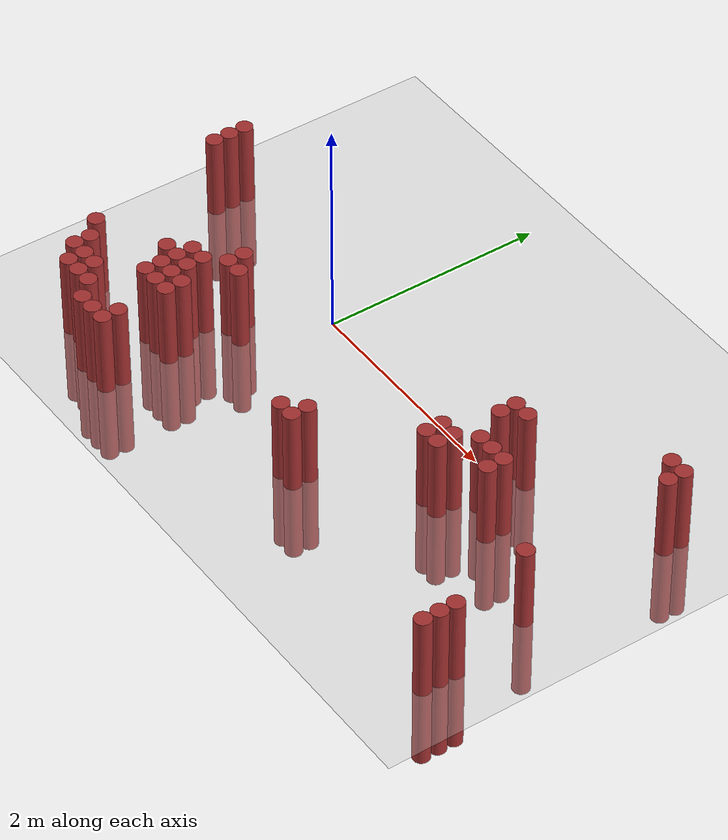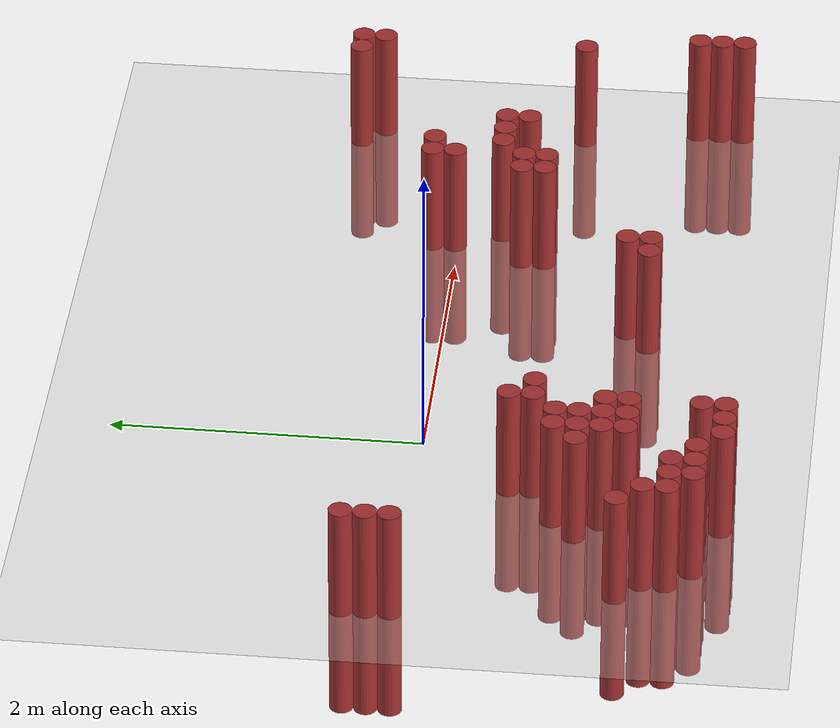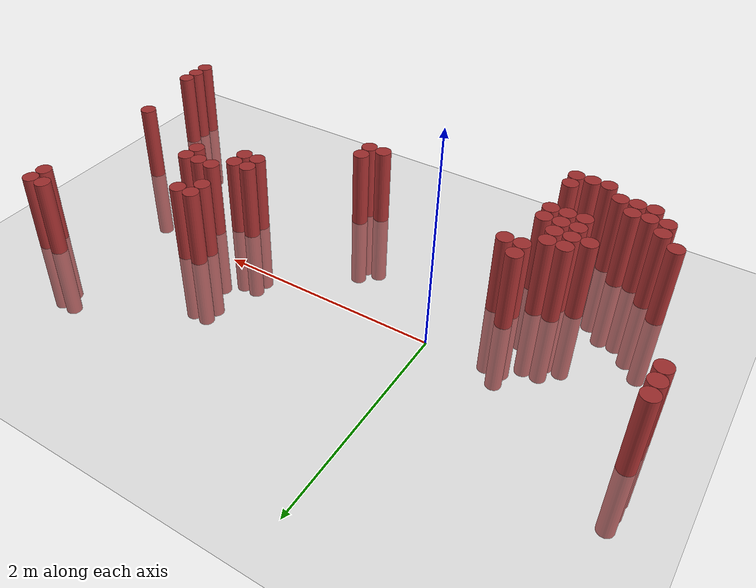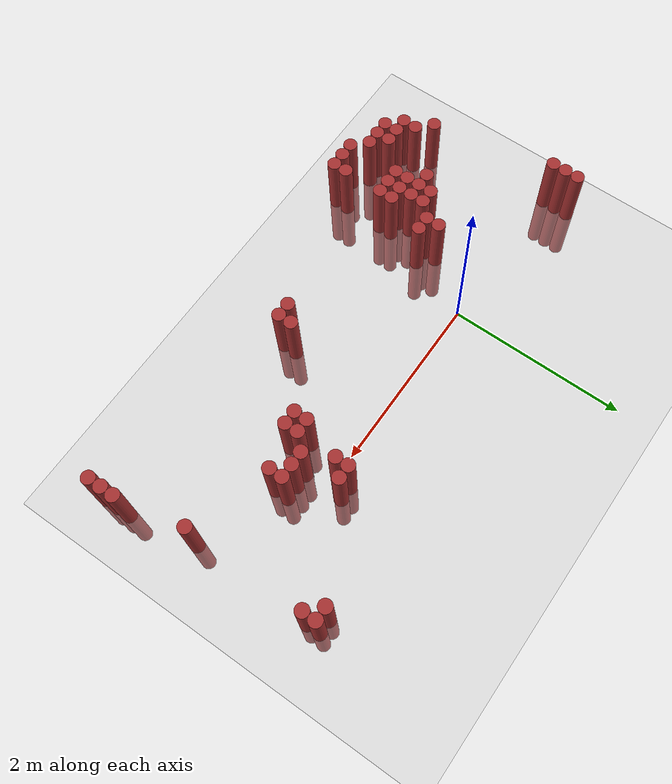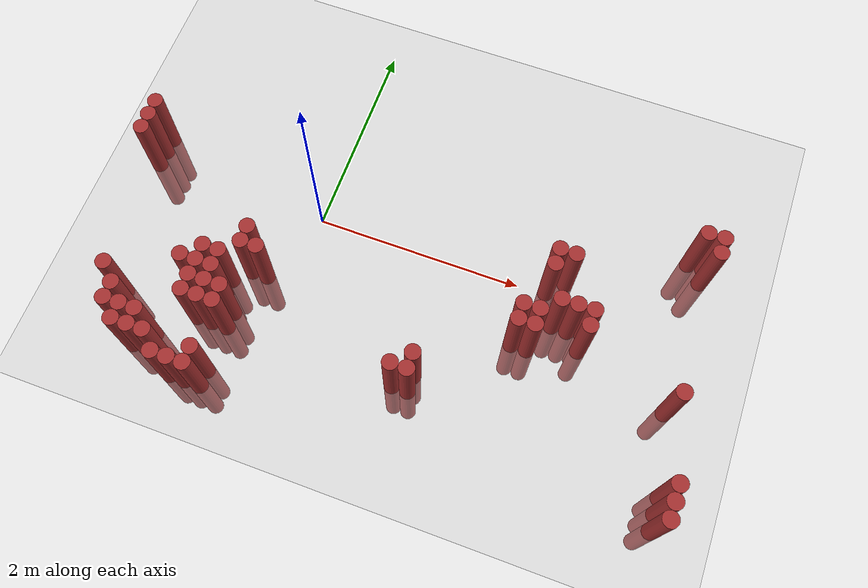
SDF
<sdf version="1.6">
 <world name="default">
  <model name="ground_plane">
   <static>1</static>
   <link name="link">
    <collision name="collision">
     <geometry><plane><normal>0 0 1</normal><size>100 100</size></plane></geometry>
     <surface><friction><ode><mu>100</mu><mu2>50</mu2></ode></friction></surface>
    </collision>
    <visual name="visual">
     <cast_shadows>0</cast_shadows>
     <geometry><plane><normal>0 0 1</normal><size>100 100</size></plane></geometry>
     <material>
      <script><uri>file://media/materials/scripts/gazebo.material</uri><name>Gazebo/Grey</name></script>
     </material>
    </visual>
   </link>
  </model>
  <model name="unit_cylinder_329">
   <static>1</static>
   <pose>-1.775000 0.025000 0.000000 0.000000 0.000000 0.000000</pose>
   <link name="link">
    <inertial>
     <mass>1</mass>
     <inertia><ixx>0.145833</ixx><ixy>0</ixy><ixz>0</ixz><iyy>0.145833</iyy><iyz>0</iyz><izz>0.125</izz></inertia>
    </inertial>
    <collision name="collision">
     <geometry><cylinder><radius>0.075000</radius><length>1.5</length></cylinder></geometry>
    </collision>
    <visual name="visual">
     <geometry><cylinder><radius>0.075000</radius><length>1.5</length></cylinder></geometry>
     <material>
      <ambient>0.648000 0.192000 0.192000 1</ambient>
      <diffuse>0.648000 0.192000 0.192000 1</diffuse>
     </material>
     <material>
      <script><name>Gazebo/Grey</name><uri>file://media/materials/scripts/gazebo.material</uri></script>
     </material>
    </visual>
   </link>
  </model>
  <model name="unit_cylinder_330">
   <static>1</static>
   <pose>-1.775000 0.175000 0.000000 0.000000 0.000000 0.000000</pose>
   <link name="link">
    <inertial>
     <mass>1</mass>
     <inertia><ixx>0.145833</ixx><ixy>0</ixy><ixz>0</ixz><iyy>0.145833</iyy><iyz>0</iyz><izz>0.125</izz></inertia>
    </inertial>
    <collision name="collision">
     <geometry><cylinder><radius>0.075000</radius><length>1.5</length></cylinder></geometry>
    </collision>
    <visual name="visual">
     <geometry><cylinder><radius>0.075000</radius><length>1.5</length></cylinder></geometry>
     <material>
      <ambient>0.648000 0.192000 0.192000 1</ambient>
      <diffuse>0.648000 0.192000 0.192000 1</diffuse>
     </material>
     <material>
      <script><name>Gazebo/Grey</name><uri>file://media/materials/scripts/gazebo.material</uri></script>
     </material>
    </visual>
   </link>
  </model>
  <model name="unit_cylinder_331">
   <static>1</static>
   <pose>-1.775000 0.325000 0.000000 0.000000 0.000000 0.000000</pose>
   <link name="link">
    <inertial>
     <mass>1</mass>
     <inertia><ixx>0.145833</ixx><ixy>0</ixy><ixz>0</ixz><iyy>0.145833</iyy><iyz>0</iyz><izz>0.125</izz></inertia>
    </inertial>
    <collision name="collision">
     <geometry><cylinder><radius>0.075000</radius><length>1.5</length></cylinder></geometry>
    </collision>
    <visual name="visual">
     <geometry><cylinder><radius>0.075000</radius><length>1.5</length></cylinder></geometry>
     <material>
      <ambient>0.648000 0.192000 0.192000 1</ambient>
      <diffuse>0.648000 0.192000 0.192000 1</diffuse>
     </material>
     <material>
      <script><name>Gazebo/Grey</name><uri>file://media/materials/scripts/gazebo.material</uri></script>
     </material>
    </visual>
   </link>
  </model>
  <model name="unit_cylinder_333">
   <static>1</static>
   <pose>-1.475000 -1.325000 0.000000 0.000000 0.000000 0.000000</pose>
   <link name="link">
    <inertial>
     <mass>1</mass>
     <inertia><ixx>0.145833</ixx><ixy>0</ixy><ixz>0</ixz><iyy>0.145833</iyy><iyz>0</iyz><izz>0.125</izz></inertia>
    </inertial>
    <collision name="collision">
     <geometry><cylinder><radius>0.075000</radius><length>1.5</length></cylinder></geometry>
    </collision>
    <visual name="visual">
     <geometry><cylinder><radius>0.075000</radius><length>1.5</length></cylinder></geometry>
     <material>
      <ambient>0.648000 0.192000 0.192000 1</ambient>
      <diffuse>0.648000 0.192000 0.192000 1</diffuse>
     </material>
     <material>
      <script><name>Gazebo/Grey</name><uri>file://media/materials/scripts/gazebo.material</uri></script>
     </material>
    </visual>
   </link>
  </model>
  <model name="unit_cylinder_334">
   <static>1</static>
   <pose>-1.325000 -1.625000 0.000000 0.000000 0.000000 0.000000</pose>
   <link name="link">
    <inertial>
     <mass>1</mass>
     <inertia><ixx>0.145833</ixx><ixy>0</ixy><ixz>0</ixz><iyy>0.145833</iyy><iyz>0</iyz><izz>0.125</izz></inertia>
    </inertial>
    <collision name="collision">
     <geometry><cylinder><radius>0.075000</radius><length>1.5</length></cylinder></geometry>
    </collision>
    <visual name="visual">
     <geometry><cylinder><radius>0.075000</radius><length>1.5</length></cylinder></geometry>
     <material>
      <ambient>0.648000 0.192000 0.192000 1</ambient>
      <diffuse>0.648000 0.192000 0.192000 1</diffuse>
     </material>
     <material>
      <script><name>Gazebo/Grey</name><uri>file://media/materials/scripts/gazebo.material</uri></script>
     </material>
    </visual>
   </link>
  </model>
  <model name="unit_cylinder_335">
   <static>1</static>
   <pose>-1.325000 -1.475000 0.000000 0.000000 0.000000 0.000000</pose>
   <link name="link">
    <inertial>
     <mass>1</mass>
     <inertia><ixx>0.145833</ixx><ixy>0</ixy><ixz>0</ixz><iyy>0.145833</iyy><iyz>0</iyz><izz>0.125</izz></inertia>
    </inertial>
    <collision name="collision">
     <geometry><cylinder><radius>0.075000</radius><length>1.5</length></cylinder></geometry>
    </collision>
    <visual name="visual">
     <geometry><cylinder><radius>0.075000</radius><length>1.5</length></cylinder></geometry>
     <material>
      <ambient>0.648000 0.192000 0.192000 1</ambient>
      <diffuse>0.648000 0.192000 0.192000 1</diffuse>
     </material>
     <material>
      <script><name>Gazebo/Grey</name><uri>file://media/materials/scripts/gazebo.material</uri></script>
     </material>
    </visual>
   </link>
  </model>
  <model name="unit_cylinder_336">
   <static>1</static>
   <pose>-1.175000 -1.775000 0.000000 0.000000 0.000000 0.000000</pose>
   <link name="link">
    <inertial>
     <mass>1</mass>
     <inertia><ixx>0.145833</ixx><ixy>0</ixy><ixz>0</ixz><iyy>0.145833</iyy><iyz>0</iyz><izz>0.125</izz></inertia>
    </inertial>
    <collision name="collision">
     <geometry><cylinder><radius>0.075000</radius><length>1.5</length></cylinder></geometry>
    </collision>
    <visual name="visual">
     <geometry><cylinder><radius>0.075000</radius><length>1.5</length></cylinder></geometry>
     <material>
      <ambient>0.648000 0.192000 0.192000 1</ambient>
      <diffuse>0.648000 0.192000 0.192000 1</diffuse>
     </material>
     <material>
      <script><name>Gazebo/Grey</name><uri>file://media/materials/scripts/gazebo.material</uri></script>
     </material>
    </visual>
   </link>
  </model>
  <model name="unit_cylinder_337">
   <static>1</static>
   <pose>-1.175000 -1.625000 0.000000 0.000000 0.000000 0.000000</pose>
   <link name="link">
    <inertial>
     <mass>1</mass>
     <inertia><ixx>0.145833</ixx><ixy>0</ixy><ixz>0</ixz><iyy>0.145833</iyy><iyz>0</iyz><izz>0.125</izz></inertia>
    </inertial>
    <collision name="collision">
     <geometry><cylinder><radius>0.075000</radius><length>1.5</length></cylinder></geometry>
    </collision>
    <visual name="visual">
     <geometry><cylinder><radius>0.075000</radius><length>1.5</length></cylinder></geometry>
     <material>
      <ambient>0.648000 0.192000 0.192000 1</ambient>
      <diffuse>0.648000 0.192000 0.192000 1</diffuse>
     </material>
     <material>
      <script><name>Gazebo/Grey</name><uri>file://media/materials/scripts/gazebo.material</uri></script>
     </material>
    </visual>
   </link>
  </model>
  <model name="unit_cylinder_340">
   <static>1</static>
   <pose>-1.025000 -1.775000 0.000000 0.000000 0.000000 0.000000</pose>
   <link name="link">
    <inertial>
     <mass>1</mass>
     <inertia><ixx>0.145833</ixx><ixy>0</ixy><ixz>0</ixz><iyy>0.145833</iyy><iyz>0</iyz><izz>0.125</izz></inertia>
    </inertial>
    <collision name="collision">
     <geometry><cylinder><radius>0.075000</radius><length>1.5</length></cylinder></geometry>
    </collision>
    <visual name="visual">
     <geometry><cylinder><radius>0.075000</radius><length>1.5</length></cylinder></geometry>
     <material>
      <ambient>0.648000 0.192000 0.192000 1</ambient>
      <diffuse>0.648000 0.192000 0.192000 1</diffuse>
     </material>
     <material>
      <script><name>Gazebo/Grey</name><uri>file://media/materials/scripts/gazebo.material</uri></script>
     </material>
    </visual>
   </link>
  </model>
  <model name="unit_cylinder_341">
   <static>1</static>
   <pose>-1.025000 -1.625000 0.000000 0.000000 0.000000 0.000000</pose>
   <link name="link">
    <inertial>
     <mass>1</mass>
     <inertia><ixx>0.145833</ixx><ixy>0</ixy><ixz>0</ixz><iyy>0.145833</iyy><iyz>0</iyz><izz>0.125</izz></inertia>
    </inertial>
    <collision name="collision">
     <geometry><cylinder><radius>0.075000</radius><length>1.5</length></cylinder></geometry>
    </collision>
    <visual name="visual">
     <geometry><cylinder><radius>0.075000</radius><length>1.5</length></cylinder></geometry>
     <material>
      <ambient>0.648000 0.192000 0.192000 1</ambient>
      <diffuse>0.648000 0.192000 0.192000 1</diffuse>
     </material>
     <material>
      <script><name>Gazebo/Grey</name><uri>file://media/materials/scripts/gazebo.material</uri></script>
     </material>
    </visual>
   </link>
  </model>
  <model name="unit_cylinder_343">
   <static>1</static>
   <pose>-0.875000 -1.775000 0.000000 0.000000 0.000000 0.000000</pose>
   <link name="link">
    <inertial>
     <mass>1</mass>
     <inertia><ixx>0.145833</ixx><ixy>0</ixy><ixz>0</ixz><iyy>0.145833</iyy><iyz>0</iyz><izz>0.125</izz></inertia>
    </inertial>
    <collision name="collision">
     <geometry><cylinder><radius>0.075000</radius><length>1.5</length></cylinder></geometry>
    </collision>
    <visual name="visual">
     <geometry><cylinder><radius>0.075000</radius><length>1.5</length></cylinder></geometry>
     <material>
      <ambient>0.648000 0.192000 0.192000 1</ambient>
      <diffuse>0.648000 0.192000 0.192000 1</diffuse>
     </material>
     <material>
      <script><name>Gazebo/Grey</name><uri>file://media/materials/scripts/gazebo.material</uri></script>
     </material>
    </visual>
   </link>
  </model>
  <model name="unit_cylinder_344">
   <static>1</static>
   <pose>-0.875000 -1.025000 0.000000 0.000000 0.000000 0.000000</pose>
   <link name="link">
    <inertial>
     <mass>1</mass>
     <inertia><ixx>0.145833</ixx><ixy>0</ixy><ixz>0</ixz><iyy>0.145833</iyy><iyz>0</iyz><izz>0.125</izz></inertia>
    </inertial>
    <collision name="collision">
     <geometry><cylinder><radius>0.075000</radius><length>1.5</length></cylinder></geometry>
    </collision>
    <visual name="visual">
     <geometry><cylinder><radius>0.075000</radius><length>1.5</length></cylinder></geometry>
     <material>
      <ambient>0.648000 0.192000 0.192000 1</ambient>
      <diffuse>0.648000 0.192000 0.192000 1</diffuse>
     </material>
     <material>
      <script><name>Gazebo/Grey</name><uri>file://media/materials/scripts/gazebo.material</uri></script>
     </material>
    </visual>
   </link>
  </model>
  <model name="unit_cylinder_345">
   <static>1</static>
   <pose>-0.725000 -1.925000 0.000000 0.000000 0.000000 0.000000</pose>
   <link name="link">
    <inertial>
     <mass>1</mass>
     <inertia><ixx>0.145833</ixx><ixy>0</ixy><ixz>0</ixz><iyy>0.145833</iyy><iyz>0</iyz><izz>0.125</izz></inertia>
    </inertial>
    <collision name="collision">
     <geometry><cylinder><radius>0.075000</radius><length>1.5</length></cylinder></geometry>
    </collision>
    <visual name="visual">
     <geometry><cylinder><radius>0.075000</radius><length>1.5</length></cylinder></geometry>
     <material>
      <ambient>0.648000 0.192000 0.192000 1</ambient>
      <diffuse>0.648000 0.192000 0.192000 1</diffuse>
     </material>
     <material>
      <script><name>Gazebo/Grey</name><uri>file://media/materials/scripts/gazebo.material</uri></script>
     </material>
    </visual>
   </link>
  </model>
  <model name="unit_cylinder_346">
   <static>1</static>
   <pose>-0.725000 -1.325000 0.000000 0.000000 0.000000 0.000000</pose>
   <link name="link">
    <inertial>
     <mass>1</mass>
     <inertia><ixx>0.145833</ixx><ixy>0</ixy><ixz>0</ixz><iyy>0.145833</iyy><iyz>0</iyz><izz>0.125</izz></inertia>
    </inertial>
    <collision name="collision">
     <geometry><cylinder><radius>0.075000</radius><length>1.5</length></cylinder></geometry>
    </collision>
    <visual name="visual">
     <geometry><cylinder><radius>0.075000</radius><length>1.5</length></cylinder></geometry>
     <material>
      <ambient>0.648000 0.192000 0.192000 1</ambient>
      <diffuse>0.648000 0.192000 0.192000 1</diffuse>
     </material>
     <material>
      <script><name>Gazebo/Grey</name><uri>file://media/materials/scripts/gazebo.material</uri></script>
     </material>
    </visual>
   </link>
  </model>
  <model name="unit_cylinder_347">
   <static>1</static>
   <pose>-0.725000 -1.175000 0.000000 0.000000 0.000000 0.000000</pose>
   <link name="link">
    <inertial>
     <mass>1</mass>
     <inertia><ixx>0.145833</ixx><ixy>0</ixy><ixz>0</ixz><iyy>0.145833</iyy><iyz>0</iyz><izz>0.125</izz></inertia>
    </inertial>
    <collision name="collision">
     <geometry><cylinder><radius>0.075000</radius><length>1.5</length></cylinder></geometry>
    </collision>
    <visual name="visual">
     <geometry><cylinder><radius>0.075000</radius><length>1.5</length></cylinder></geometry>
     <material>
      <ambient>0.648000 0.192000 0.192000 1</ambient>
      <diffuse>0.648000 0.192000 0.192000 1</diffuse>
     </material>
     <material>
      <script><name>Gazebo/Grey</name><uri>file://media/materials/scripts/gazebo.material</uri></script>
     </material>
    </visual>
   </link>
  </model>
  <model name="unit_cylinder_348">
   <static>1</static>
   <pose>-0.725000 -1.025000 0.000000 0.000000 0.000000 0.000000</pose>
   <link name="link">
    <inertial>
     <mass>1</mass>
     <inertia><ixx>0.145833</ixx><ixy>0</ixy><ixz>0</ixz><iyy>0.145833</iyy><iyz>0</iyz><izz>0.125</izz></inertia>
    </inertial>
    <collision name="collision">
     <geometry><cylinder><radius>0.075000</radius><length>1.5</length></cylinder></geometry>
    </collision>
    <visual name="visual">
     <geometry><cylinder><radius>0.075000</radius><length>1.5</length></cylinder></geometry>
     <material>
      <ambient>0.648000 0.192000 0.192000 1</ambient>
      <diffuse>0.648000 0.192000 0.192000 1</diffuse>
     </material>
     <material>
      <script><name>Gazebo/Grey</name><uri>file://media/materials/scripts/gazebo.material</uri></script>
     </material>
    </visual>
   </link>
  </model>
  <model name="unit_cylinder_349">
   <static>1</static>
   <pose>-0.725000 -0.875000 0.000000 0.000000 0.000000 0.000000</pose>
   <link name="link">
    <inertial>
     <mass>1</mass>
     <inertia><ixx>0.145833</ixx><ixy>0</ixy><ixz>0</ixz><iyy>0.145833</iyy><iyz>0</iyz><izz>0.125</izz></inertia>
    </inertial>
    <collision name="collision">
     <geometry><cylinder><radius>0.075000</radius><length>1.5</length></cylinder></geometry>
    </collision>
    <visual name="visual">
     <geometry><cylinder><radius>0.075000</radius><length>1.5</length></cylinder></geometry>
     <material>
      <ambient>0.648000 0.192000 0.192000 1</ambient>
      <diffuse>0.648000 0.192000 0.192000 1</diffuse>
     </material>
     <material>
      <script><name>Gazebo/Grey</name><uri>file://media/materials/scripts/gazebo.material</uri></script>
     </material>
    </visual>
   </link>
  </model>
  <model name="unit_cylinder_350">
   <static>1</static>
   <pose>-0.575000 -1.925000 0.000000 0.000000 0.000000 0.000000</pose>
   <link name="link">
    <inertial>
     <mass>1</mass>
     <inertia><ixx>0.145833</ixx><ixy>0</ixy><ixz>0</ixz><iyy>0.145833</iyy><iyz>0</iyz><izz>0.125</izz></inertia>
    </inertial>
    <collision name="collision">
     <geometry><cylinder><radius>0.075000</radius><length>1.5</length></cylinder></geometry>
    </collision>
    <visual name="visual">
     <geometry><cylinder><radius>0.075000</radius><length>1.5</length></cylinder></geometry>
     <material>
      <ambient>0.648000 0.192000 0.192000 1</ambient>
      <diffuse>0.648000 0.192000 0.192000 1</diffuse>
     </material>
     <material>
      <script><name>Gazebo/Grey</name><uri>file://media/materials/scripts/gazebo.material</uri></script>
     </material>
    </visual>
   </link>
  </model>
  <model name="unit_cylinder_351">
   <static>1</static>
   <pose>-0.575000 -1.325000 0.000000 0.000000 0.000000 0.000000</pose>
   <link name="link">
    <inertial>
     <mass>1</mass>
     <inertia><ixx>0.145833</ixx><ixy>0</ixy><ixz>0</ixz><iyy>0.145833</iyy><iyz>0</iyz><izz>0.125</izz></inertia>
    </inertial>
    <collision name="collision">
     <geometry><cylinder><radius>0.075000</radius><length>1.5</length></cylinder></geometry>
    </collision>
    <visual name="visual">
     <geometry><cylinder><radius>0.075000</radius><length>1.5</length></cylinder></geometry>
     <material>
      <ambient>0.648000 0.192000 0.192000 1</ambient>
      <diffuse>0.648000 0.192000 0.192000 1</diffuse>
     </material>
     <material>
      <script><name>Gazebo/Grey</name><uri>file://media/materials/scripts/gazebo.material</uri></script>
     </material>
    </visual>
   </link>
  </model>
  <model name="unit_cylinder_352">
   <static>1</static>
   <pose>-0.575000 -1.175000 0.000000 0.000000 0.000000 0.000000</pose>
   <link name="link">
    <inertial>
     <mass>1</mass>
     <inertia><ixx>0.145833</ixx><ixy>0</ixy><ixz>0</ixz><iyy>0.145833</iyy><iyz>0</iyz><izz>0.125</izz></inertia>
    </inertial>
    <collision name="collision">
     <geometry><cylinder><radius>0.075000</radius><length>1.5</length></cylinder></geometry>
    </collision>
    <visual name="visual">
     <geometry><cylinder><radius>0.075000</radius><length>1.5</length></cylinder></geometry>
     <material>
      <ambient>0.648000 0.192000 0.192000 1</ambient>
      <diffuse>0.648000 0.192000 0.192000 1</diffuse>
     </material>
     <material>
      <script><name>Gazebo/Grey</name><uri>file://media/materials/scripts/gazebo.material</uri></script>
     </material>
    </visual>
   </link>
  </model>
  <model name="unit_cylinder_353">
   <static>1</static>
   <pose>-0.575000 -1.025000 0.000000 0.000000 0.000000 0.000000</pose>
   <link name="link">
    <inertial>
     <mass>1</mass>
     <inertia><ixx>0.145833</ixx><ixy>0</ixy><ixz>0</ixz><iyy>0.145833</iyy><iyz>0</iyz><izz>0.125</izz></inertia>
    </inertial>
    <collision name="collision">
     <geometry><cylinder><radius>0.075000</radius><length>1.5</length></cylinder></geometry>
    </collision>
    <visual name="visual">
     <geometry><cylinder><radius>0.075000</radius><length>1.5</length></cylinder></geometry>
     <material>
      <ambient>0.648000 0.192000 0.192000 1</ambient>
      <diffuse>0.648000 0.192000 0.192000 1</diffuse>
     </material>
     <material>
      <script><name>Gazebo/Grey</name><uri>file://media/materials/scripts/gazebo.material</uri></script>
     </material>
    </visual>
   </link>
  </model>
  <model name="unit_cylinder_354">
   <static>1</static>
   <pose>-0.575000 -0.875000 0.000000 0.000000 0.000000 0.000000</pose>
   <link name="link">
    <inertial>
     <mass>1</mass>
     <inertia><ixx>0.145833</ixx><ixy>0</ixy><ixz>0</ixz><iyy>0.145833</iyy><iyz>0</iyz><izz>0.125</izz></inertia>
    </inertial>
    <collision name="collision">
     <geometry><cylinder><radius>0.075000</radius><length>1.5</length></cylinder></geometry>
    </collision>
    <visual name="visual">
     <geometry><cylinder><radius>0.075000</radius><length>1.5</length></cylinder></geometry>
     <material>
      <ambient>0.648000 0.192000 0.192000 1</ambient>
      <diffuse>0.648000 0.192000 0.192000 1</diffuse>
     </material>
     <material>
      <script><name>Gazebo/Grey</name><uri>file://media/materials/scripts/gazebo.material</uri></script>
     </material>
    </visual>
   </link>
  </model>
  <model name="unit_cylinder_355">
   <static>1</static>
   <pose>-0.425000 -1.925000 0.000000 0.000000 0.000000 0.000000</pose>
   <link name="link">
    <inertial>
     <mass>1</mass>
     <inertia><ixx>0.145833</ixx><ixy>0</ixy><ixz>0</ixz><iyy>0.145833</iyy><iyz>0</iyz><izz>0.125</izz></inertia>
    </inertial>
    <collision name="collision">
     <geometry><cylinder><radius>0.075000</radius><length>1.5</length></cylinder></geometry>
    </collision>
    <visual name="visual">
     <geometry><cylinder><radius>0.075000</radius><length>1.5</length></cylinder></geometry>
     <material>
      <ambient>0.648000 0.192000 0.192000 1</ambient>
      <diffuse>0.648000 0.192000 0.192000 1</diffuse>
     </material>
     <material>
      <script><name>Gazebo/Grey</name><uri>file://media/materials/scripts/gazebo.material</uri></script>
     </material>
    </visual>
   </link>
  </model>
  <model name="unit_cylinder_356">
   <static>1</static>
   <pose>-0.425000 -1.775000 0.000000 0.000000 0.000000 0.000000</pose>
   <link name="link">
    <inertial>
     <mass>1</mass>
     <inertia><ixx>0.145833</ixx><ixy>0</ixy><ixz>0</ixz><iyy>0.145833</iyy><iyz>0</iyz><izz>0.125</izz></inertia>
    </inertial>
    <collision name="collision">
     <geometry><cylinder><radius>0.075000</radius><length>1.5</length></cylinder></geometry>
    </collision>
    <visual name="visual">
     <geometry><cylinder><radius>0.075000</radius><length>1.5</length></cylinder></geometry>
     <material>
      <ambient>0.648000 0.192000 0.192000 1</ambient>
      <diffuse>0.648000 0.192000 0.192000 1</diffuse>
     </material>
     <material>
      <script><name>Gazebo/Grey</name><uri>file://media/materials/scripts/gazebo.material</uri></script>
     </material>
    </visual>
   </link>
  </model>
  <model name="unit_cylinder_357">
   <static>1</static>
   <pose>-0.425000 -1.325000 0.000000 0.000000 0.000000 0.000000</pose>
   <link name="link">
    <inertial>
     <mass>1</mass>
     <inertia><ixx>0.145833</ixx><ixy>0</ixy><ixz>0</ixz><iyy>0.145833</iyy><iyz>0</iyz><izz>0.125</izz></inertia>
    </inertial>
    <collision name="collision">
     <geometry><cylinder><radius>0.075000</radius><length>1.5</length></cylinder></geometry>
    </collision>
    <visual name="visual">
     <geometry><cylinder><radius>0.075000</radius><length>1.5</length></cylinder></geometry>
     <material>
      <ambient>0.648000 0.192000 0.192000 1</ambient>
      <diffuse>0.648000 0.192000 0.192000 1</diffuse>
     </material>
     <material>
      <script><name>Gazebo/Grey</name><uri>file://media/materials/scripts/gazebo.material</uri></script>
     </material>
    </visual>
   </link>
  </model>
  <model name="unit_cylinder_358">
   <static>1</static>
   <pose>-0.425000 -1.175000 0.000000 0.000000 0.000000 0.000000</pose>
   <link name="link">
    <inertial>
     <mass>1</mass>
     <inertia><ixx>0.145833</ixx><ixy>0</ixy><ixz>0</ixz><iyy>0.145833</iyy><iyz>0</iyz><izz>0.125</izz></inertia>
    </inertial>
    <collision name="collision">
     <geometry><cylinder><radius>0.075000</radius><length>1.5</length></cylinder></geometry>
    </collision>
    <visual name="visual">
     <geometry><cylinder><radius>0.075000</radius><length>1.5</length></cylinder></geometry>
     <material>
      <ambient>0.648000 0.192000 0.192000 1</ambient>
      <diffuse>0.648000 0.192000 0.192000 1</diffuse>
     </material>
     <material>
      <script><name>Gazebo/Grey</name><uri>file://media/materials/scripts/gazebo.material</uri></script>
     </material>
    </visual>
   </link>
  </model>
  <model name="unit_cylinder_359">
   <static>1</static>
   <pose>-0.425000 -0.725000 0.000000 0.000000 0.000000 0.000000</pose>
   <link name="link">
    <inertial>
     <mass>1</mass>
     <inertia><ixx>0.145833</ixx><ixy>0</ixy><ixz>0</ixz><iyy>0.145833</iyy><iyz>0</iyz><izz>0.125</izz></inertia>
    </inertial>
    <collision name="collision">
     <geometry><cylinder><radius>0.075000</radius><length>1.5</length></cylinder></geometry>
    </collision>
    <visual name="visual">
     <geometry><cylinder><radius>0.075000</radius><length>1.5</length></cylinder></geometry>
     <material>
      <ambient>0.648000 0.192000 0.192000 1</ambient>
      <diffuse>0.648000 0.192000 0.192000 1</diffuse>
     </material>
     <material>
      <script><name>Gazebo/Grey</name><uri>file://media/materials/scripts/gazebo.material</uri></script>
     </material>
    </visual>
   </link>
  </model>
  <model name="unit_cylinder_360">
   <static>1</static>
   <pose>-0.425000 -0.575000 0.000000 0.000000 0.000000 0.000000</pose>
   <link name="link">
    <inertial>
     <mass>1</mass>
     <inertia><ixx>0.145833</ixx><ixy>0</ixy><ixz>0</ixz><iyy>0.145833</iyy><iyz>0</iyz><izz>0.125</izz></inertia>
    </inertial>
    <collision name="collision">
     <geometry><cylinder><radius>0.075000</radius><length>1.5</length></cylinder></geometry>
    </collision>
    <visual name="visual">
     <geometry><cylinder><radius>0.075000</radius><length>1.5</length></cylinder></geometry>
     <material>
      <ambient>0.648000 0.192000 0.192000 1</ambient>
      <diffuse>0.648000 0.192000 0.192000 1</diffuse>
     </material>
     <material>
      <script><name>Gazebo/Grey</name><uri>file://media/materials/scripts/gazebo.material</uri></script>
     </material>
    </visual>
   </link>
  </model>
  <model name="unit_cylinder_361">
   <static>1</static>
   <pose>-0.275000 -0.725000 0.000000 0.000000 0.000000 0.000000</pose>
   <link name="link">
    <inertial>
     <mass>1</mass>
     <inertia><ixx>0.145833</ixx><ixy>0</ixy><ixz>0</ixz><iyy>0.145833</iyy><iyz>0</iyz><izz>0.125</izz></inertia>
    </inertial>
    <collision name="collision">
     <geometry><cylinder><radius>0.075000</radius><length>1.5</length></cylinder></geometry>
    </collision>
    <visual name="visual">
     <geometry><cylinder><radius>0.075000</radius><length>1.5</length></cylinder></geometry>
     <material>
      <ambient>0.648000 0.192000 0.192000 1</ambient>
      <diffuse>0.648000 0.192000 0.192000 1</diffuse>
     </material>
     <material>
      <script><name>Gazebo/Grey</name><uri>file://media/materials/scripts/gazebo.material</uri></script>
     </material>
    </visual>
   </link>
  </model>
  <model name="unit_cylinder_368">
   <static>1</static>
   <pose>1.225000 -1.325000 0.000000 0.000000 0.000000 0.000000</pose>
   <link name="link">
    <inertial>
     <mass>1</mass>
     <inertia><ixx>0.145833</ixx><ixy>0</ixy><ixz>0</ixz><iyy>0.145833</iyy><iyz>0</iyz><izz>0.125</izz></inertia>
    </inertial>
    <collision name="collision">
     <geometry><cylinder><radius>0.075000</radius><length>1.5</length></cylinder></geometry>
    </collision>
    <visual name="visual">
     <geometry><cylinder><radius>0.075000</radius><length>1.5</length></cylinder></geometry>
     <material>
      <ambient>0.648000 0.192000 0.192000 1</ambient>
      <diffuse>0.648000 0.192000 0.192000 1</diffuse>
     </material>
     <material>
      <script><name>Gazebo/Grey</name><uri>file://media/materials/scripts/gazebo.material</uri></script>
     </material>
    </visual>
   </link>
  </model>
  <model name="unit_cylinder_373">
   <static>1</static>
   <pose>1.375000 -1.325000 0.000000 0.000000 0.000000 0.000000</pose>
   <link name="link">
    <inertial>
     <mass>1</mass>
     <inertia><ixx>0.145833</ixx><ixy>0</ixy><ixz>0</ixz><iyy>0.145833</iyy><iyz>0</iyz><izz>0.125</izz></inertia>
    </inertial>
    <collision name="collision">
     <geometry><cylinder><radius>0.075000</radius><length>1.5</length></cylinder></geometry>
    </collision>
    <visual name="visual">
     <geometry><cylinder><radius>0.075000</radius><length>1.5</length></cylinder></geometry>
     <material>
      <ambient>0.648000 0.192000 0.192000 1</ambient>
      <diffuse>0.648000 0.192000 0.192000 1</diffuse>
     </material>
     <material>
      <script><name>Gazebo/Grey</name><uri>file://media/materials/scripts/gazebo.material</uri></script>
     </material>
    </visual>
   </link>
  </model>
  <model name="unit_cylinder_374">
   <static>1</static>
   <pose>1.375000 -1.175000 0.000000 0.000000 0.000000 0.000000</pose>
   <link name="link">
    <inertial>
     <mass>1</mass>
     <inertia><ixx>0.145833</ixx><ixy>0</ixy><ixz>0</ixz><iyy>0.145833</iyy><iyz>0</iyz><izz>0.125</izz></inertia>
    </inertial>
    <collision name="collision">
     <geometry><cylinder><radius>0.075000</radius><length>1.5</length></cylinder></geometry>
    </collision>
    <visual name="visual">
     <geometry><cylinder><radius>0.075000</radius><length>1.5</length></cylinder></geometry>
     <material>
      <ambient>0.648000 0.192000 0.192000 1</ambient>
      <diffuse>0.648000 0.192000 0.192000 1</diffuse>
     </material>
     <material>
      <script><name>Gazebo/Grey</name><uri>file://media/materials/scripts/gazebo.material</uri></script>
     </material>
    </visual>
   </link>
  </model>
  <model name="unit_cylinder_398">
   <static>1</static>
   <pose>2.125000 -0.575000 0.000000 0.000000 0.000000 0.000000</pose>
   <link name="link">
    <inertial>
     <mass>1</mass>
     <inertia><ixx>0.145833</ixx><ixy>0</ixy><ixz>0</ixz><iyy>0.145833</iyy><iyz>0</iyz><izz>0.125</izz></inertia>
    </inertial>
    <collision name="collision">
     <geometry><cylinder><radius>0.075000</radius><length>1.5</length></cylinder></geometry>
    </collision>
    <visual name="visual">
     <geometry><cylinder><radius>0.075000</radius><length>1.5</length></cylinder></geometry>
     <material>
      <ambient>0.648000 0.192000 0.192000 1</ambient>
      <diffuse>0.648000 0.192000 0.192000 1</diffuse>
     </material>
     <material>
      <script><name>Gazebo/Grey</name><uri>file://media/materials/scripts/gazebo.material</uri></script>
     </material>
    </visual>
   </link>
  </model>
  <model name="unit_cylinder_399">
   <static>1</static>
   <pose>2.125000 -0.425000 0.000000 0.000000 0.000000 0.000000</pose>
   <link name="link">
    <inertial>
     <mass>1</mass>
     <inertia><ixx>0.145833</ixx><ixy>0</ixy><ixz>0</ixz><iyy>0.145833</iyy><iyz>0</iyz><izz>0.125</izz></inertia>
    </inertial>
    <collision name="collision">
     <geometry><cylinder><radius>0.075000</radius><length>1.5</length></cylinder></geometry>
    </collision>
    <visual name="visual">
     <geometry><cylinder><radius>0.075000</radius><length>1.5</length></cylinder></geometry>
     <material>
      <ambient>0.648000 0.192000 0.192000 1</ambient>
      <diffuse>0.648000 0.192000 0.192000 1</diffuse>
     </material>
     <material>
      <script><name>Gazebo/Grey</name><uri>file://media/materials/scripts/gazebo.material</uri></script>
     </material>
    </visual>
   </link>
  </model>
  <model name="unit_cylinder_405">
   <static>1</static>
   <pose>2.275000 -0.575000 0.000000 0.000000 0.000000 0.000000</pose>
   <link name="link">
    <inertial>
     <mass>1</mass>
     <inertia><ixx>0.145833</ixx><ixy>0</ixy><ixz>0</ixz><iyy>0.145833</iyy><iyz>0</iyz><izz>0.125</izz></inertia>
    </inertial>
    <collision name="collision">
     <geometry><cylinder><radius>0.075000</radius><length>1.5</length></cylinder></geometry>
    </collision>
    <visual name="visual">
     <geometry><cylinder><radius>0.075000</radius><length>1.5</length></cylinder></geometry>
     <material>
      <ambient>0.648000 0.192000 0.192000 1</ambient>
      <diffuse>0.648000 0.192000 0.192000 1</diffuse>
     </material>
     <material>
      <script><name>Gazebo/Grey</name><uri>file://media/materials/scripts/gazebo.material</uri></script>
     </material>
    </visual>
   </link>
  </model>
  <model name="unit_cylinder_406">
   <static>1</static>
   <pose>2.275000 -0.425000 0.000000 0.000000 0.000000 0.000000</pose>
   <link name="link">
    <inertial>
     <mass>1</mass>
     <inertia><ixx>0.145833</ixx><ixy>0</ixy><ixz>0</ixz><iyy>0.145833</iyy><iyz>0</iyz><izz>0.125</izz></inertia>
    </inertial>
    <collision name="collision">
     <geometry><cylinder><radius>0.075000</radius><length>1.5</length></cylinder></geometry>
    </collision>
    <visual name="visual">
     <geometry><cylinder><radius>0.075000</radius><length>1.5</length></cylinder></geometry>
     <material>
      <ambient>0.648000 0.192000 0.192000 1</ambient>
      <diffuse>0.648000 0.192000 0.192000 1</diffuse>
     </material>
     <material>
      <script><name>Gazebo/Grey</name><uri>file://media/materials/scripts/gazebo.material</uri></script>
     </material>
    </visual>
   </link>
  </model>
  <model name="unit_cylinder_407">
   <static>1</static>
   <pose>2.275000 0.025000 0.000000 0.000000 0.000000 0.000000</pose>
   <link name="link">
    <inertial>
     <mass>1</mass>
     <inertia><ixx>0.145833</ixx><ixy>0</ixy><ixz>0</ixz><iyy>0.145833</iyy><iyz>0</iyz><izz>0.125</izz></inertia>
    </inertial>
    <collision name="collision">
     <geometry><cylinder><radius>0.075000</radius><length>1.5</length></cylinder></geometry>
    </collision>
    <visual name="visual">
     <geometry><cylinder><radius>0.075000</radius><length>1.5</length></cylinder></geometry>
     <material>
      <ambient>0.648000 0.192000 0.192000 1</ambient>
      <diffuse>0.648000 0.192000 0.192000 1</diffuse>
     </material>
     <material>
      <script><name>Gazebo/Grey</name><uri>file://media/materials/scripts/gazebo.material</uri></script>
     </material>
    </visual>
   </link>
  </model>
  <model name="unit_cylinder_408">
   <static>1</static>
   <pose>2.275000 0.175000 0.000000 0.000000 0.000000 0.000000</pose>
   <link name="link">
    <inertial>
     <mass>1</mass>
     <inertia><ixx>0.145833</ixx><ixy>0</ixy><ixz>0</ixz><iyy>0.145833</iyy><iyz>0</iyz><izz>0.125</izz></inertia>
    </inertial>
    <collision name="collision">
     <geometry><cylinder><radius>0.075000</radius><length>1.5</length></cylinder></geometry>
    </collision>
    <visual name="visual">
     <geometry><cylinder><radius>0.075000</radius><length>1.5</length></cylinder></geometry>
     <material>
      <ambient>0.648000 0.192000 0.192000 1</ambient>
      <diffuse>0.648000 0.192000 0.192000 1</diffuse>
     </material>
     <material>
      <script><name>Gazebo/Grey</name><uri>file://media/materials/scripts/gazebo.material</uri></script>
     </material>
    </visual>
   </link>
  </model>
  <model name="unit_cylinder_411">
   <static>1</static>
   <pose>2.425000 -0.275000 0.000000 0.000000 0.000000 0.000000</pose>
   <link name="link">
    <inertial>
     <mass>1</mass>
     <inertia><ixx>0.145833</ixx><ixy>0</ixy><ixz>0</ixz><iyy>0.145833</iyy><iyz>0</iyz><izz>0.125</izz></inertia>
    </inertial>
    <collision name="collision">
     <geometry><cylinder><radius>0.075000</radius><length>1.5</length></cylinder></geometry>
    </collision>
    <visual name="visual">
     <geometry><cylinder><radius>0.075000</radius><length>1.5</length></cylinder></geometry>
     <material>
      <ambient>0.648000 0.192000 0.192000 1</ambient>
      <diffuse>0.648000 0.192000 0.192000 1</diffuse>
     </material>
     <material>
      <script><name>Gazebo/Grey</name><uri>file://media/materials/scripts/gazebo.material</uri></script>
     </material>
    </visual>
   </link>
  </model>
  <model name="unit_cylinder_412">
   <static>1</static>
   <pose>2.425000 0.175000 0.000000 0.000000 0.000000 0.000000</pose>
   <link name="link">
    <inertial>
     <mass>1</mass>
     <inertia><ixx>0.145833</ixx><ixy>0</ixy><ixz>0</ixz><iyy>0.145833</iyy><iyz>0</iyz><izz>0.125</izz></inertia>
    </inertial>
    <collision name="collision">
     <geometry><cylinder><radius>0.075000</radius><length>1.5</length></cylinder></geometry>
    </collision>
    <visual name="visual">
     <geometry><cylinder><radius>0.075000</radius><length>1.5</length></cylinder></geometry>
     <material>
      <ambient>0.648000 0.192000 0.192000 1</ambient>
      <diffuse>0.648000 0.192000 0.192000 1</diffuse>
     </material>
     <material>
      <script><name>Gazebo/Grey</name><uri>file://media/materials/scripts/gazebo.material</uri></script>
     </material>
    </visual>
   </link>
  </model>
  <model name="unit_cylinder_413">
   <static>1</static>
   <pose>2.575000 -0.275000 0.000000 0.000000 0.000000 0.000000</pose>
   <link name="link">
    <inertial>
     <mass>1</mass>
     <inertia><ixx>0.145833</ixx><ixy>0</ixy><ixz>0</ixz><iyy>0.145833</iyy><iyz>0</iyz><izz>0.125</izz></inertia>
    </inertial>
    <collision name="collision">
     <geometry><cylinder><radius>0.075000</radius><length>1.5</length></cylinder></geometry>
    </collision>
    <visual name="visual">
     <geometry><cylinder><radius>0.075000</radius><length>1.5</length></cylinder></geometry>
     <material>
      <ambient>0.648000 0.192000 0.192000 1</ambient>
      <diffuse>0.648000 0.192000 0.192000 1</diffuse>
     </material>
     <material>
      <script><name>Gazebo/Grey</name><uri>file://media/materials/scripts/gazebo.material</uri></script>
     </material>
    </visual>
   </link>
  </model>
  <model name="unit_cylinder_414">
   <static>1</static>
   <pose>2.725000 -0.425000 0.000000 0.000000 0.000000 0.000000</pose>
   <link name="link">
    <inertial>
     <mass>1</mass>
     <inertia><ixx>0.145833</ixx><ixy>0</ixy><ixz>0</ixz><iyy>0.145833</iyy><iyz>0</iyz><izz>0.125</izz></inertia>
    </inertial>
    <collision name="collision">
     <geometry><cylinder><radius>0.075000</radius><length>1.5</length></cylinder></geometry>
    </collision>
    <visual name="visual">
     <geometry><cylinder><radius>0.075000</radius><length>1.5</length></cylinder></geometry>
     <material>
      <ambient>0.648000 0.192000 0.192000 1</ambient>
      <diffuse>0.648000 0.192000 0.192000 1</diffuse>
     </material>
     <material>
      <script><name>Gazebo/Grey</name><uri>file://media/materials/scripts/gazebo.material</uri></script>
     </material>
    </visual>
   </link>
  </model>
  <model name="unit_cylinder_415">
   <static>1</static>
   <pose>2.725000 -0.275000 0.000000 0.000000 0.000000 0.000000</pose>
   <link name="link">
    <inertial>
     <mass>1</mass>
     <inertia><ixx>0.145833</ixx><ixy>0</ixy><ixz>0</ixz><iyy>0.145833</iyy><iyz>0</iyz><izz>0.125</izz></inertia>
    </inertial>
    <collision name="collision">
     <geometry><cylinder><radius>0.075000</radius><length>1.5</length></cylinder></geometry>
    </collision>
    <visual name="visual">
     <geometry><cylinder><radius>0.075000</radius><length>1.5</length></cylinder></geometry>
     <material>
      <ambient>0.648000 0.192000 0.192000 1</ambient>
      <diffuse>0.648000 0.192000 0.192000 1</diffuse>
     </material>
     <material>
      <script><name>Gazebo/Grey</name><uri>file://media/materials/scripts/gazebo.material</uri></script>
     </material>
    </visual>
   </link>
  </model>
  <model name="unit_cylinder_419">
   <static>1</static>
   <pose>3.475000 0.775000 0.000000 0.000000 0.000000 0.000000</pose>
   <link name="link">
    <inertial>
     <mass>1</mass>
     <inertia><ixx>0.145833</ixx><ixy>0</ixy><ixz>0</ixz><iyy>0.145833</iyy><iyz>0</iyz><izz>0.125</izz></inertia>
    </inertial>
    <collision name="collision">
     <geometry><cylinder><radius>0.075000</radius><length>1.5</length></cylinder></geometry>
    </collision>
    <visual name="visual">
     <geometry><cylinder><radius>0.075000</radius><length>1.5</length></cylinder></geometry>
     <material>
      <ambient>0.648000 0.192000 0.192000 1</ambient>
      <diffuse>0.648000 0.192000 0.192000 1</diffuse>
     </material>
     <material>
      <script><name>Gazebo/Grey</name><uri>file://media/materials/scripts/gazebo.material</uri></script>
     </material>
    </visual>
   </link>
  </model>
  <model name="unit_cylinder_425">
   <static>1</static>
   <pose>3.625000 -0.725000 0.000000 0.000000 0.000000 0.000000</pose>
   <link name="link">
    <inertial>
     <mass>1</mass>
     <inertia><ixx>0.145833</ixx><ixy>0</ixy><ixz>0</ixz><iyy>0.145833</iyy><iyz>0</iyz><izz>0.125</izz></inertia>
    </inertial>
    <collision name="collision">
     <geometry><cylinder><radius>0.075000</radius><length>1.5</length></cylinder></geometry>
    </collision>
    <visual name="visual">
     <geometry><cylinder><radius>0.075000</radius><length>1.5</length></cylinder></geometry>
     <material>
      <ambient>0.648000 0.192000 0.192000 1</ambient>
      <diffuse>0.648000 0.192000 0.192000 1</diffuse>
     </material>
     <material>
      <script><name>Gazebo/Grey</name><uri>file://media/materials/scripts/gazebo.material</uri></script>
     </material>
    </visual>
   </link>
  </model>
  <model name="unit_cylinder_426">
   <static>1</static>
   <pose>3.625000 0.625000 0.000000 0.000000 0.000000 0.000000</pose>
   <link name="link">
    <inertial>
     <mass>1</mass>
     <inertia><ixx>0.145833</ixx><ixy>0</ixy><ixz>0</ixz><iyy>0.145833</iyy><iyz>0</iyz><izz>0.125</izz></inertia>
    </inertial>
    <collision name="collision">
     <geometry><cylinder><radius>0.075000</radius><length>1.5</length></cylinder></geometry>
    </collision>
    <visual name="visual">
     <geometry><cylinder><radius>0.075000</radius><length>1.5</length></cylinder></geometry>
     <material>
      <ambient>0.648000 0.192000 0.192000 1</ambient>
      <diffuse>0.648000 0.192000 0.192000 1</diffuse>
     </material>
     <material>
      <script><name>Gazebo/Grey</name><uri>file://media/materials/scripts/gazebo.material</uri></script>
     </material>
    </visual>
   </link>
  </model>
  <model name="unit_cylinder_427">
   <static>1</static>
   <pose>3.625000 0.775000 0.000000 0.000000 0.000000 0.000000</pose>
   <link name="link">
    <inertial>
     <mass>1</mass>
     <inertia><ixx>0.145833</ixx><ixy>0</ixy><ixz>0</ixz><iyy>0.145833</iyy><iyz>0</iyz><izz>0.125</izz></inertia>
    </inertial>
    <collision name="collision">
     <geometry><cylinder><radius>0.075000</radius><length>1.5</length></cylinder></geometry>
    </collision>
    <visual name="visual">
     <geometry><cylinder><radius>0.075000</radius><length>1.5</length></cylinder></geometry>
     <material>
      <ambient>0.648000 0.192000 0.192000 1</ambient>
      <diffuse>0.648000 0.192000 0.192000 1</diffuse>
     </material>
     <material>
      <script><name>Gazebo/Grey</name><uri>file://media/materials/scripts/gazebo.material</uri></script>
     </material>
    </visual>
   </link>
  </model>
  <model name="unit_cylinder_434">
   <static>1</static>
   <pose>3.775000 -1.775000 0.000000 0.000000 0.000000 0.000000</pose>
   <link name="link">
    <inertial>
     <mass>1</mass>
     <inertia><ixx>0.145833</ixx><ixy>0</ixy><ixz>0</ixz><iyy>0.145833</iyy><iyz>0</iyz><izz>0.125</izz></inertia>
    </inertial>
    <collision name="collision">
     <geometry><cylinder><radius>0.075000</radius><length>1.5</length></cylinder></geometry>
    </collision>
    <visual name="visual">
     <geometry><cylinder><radius>0.075000</radius><length>1.5</length></cylinder></geometry>
     <material>
      <ambient>0.648000 0.192000 0.192000 1</ambient>
      <diffuse>0.648000 0.192000 0.192000 1</diffuse>
     </material>
     <material>
      <script><name>Gazebo/Grey</name><uri>file://media/materials/scripts/gazebo.material</uri></script>
     </material>
    </visual>
   </link>
  </model>
  <model name="unit_cylinder_435">
   <static>1</static>
   <pose>3.775000 -1.625000 0.000000 0.000000 0.000000 0.000000</pose>
   <link name="link">
    <inertial>
     <mass>1</mass>
     <inertia><ixx>0.145833</ixx><ixy>0</ixy><ixz>0</ixz><iyy>0.145833</iyy><iyz>0</iyz><izz>0.125</izz></inertia>
    </inertial>
    <collision name="collision">
     <geometry><cylinder><radius>0.075000</radius><length>1.5</length></cylinder></geometry>
    </collision>
    <visual name="visual">
     <geometry><cylinder><radius>0.075000</radius><length>1.5</length></cylinder></geometry>
     <material>
      <ambient>0.648000 0.192000 0.192000 1</ambient>
      <diffuse>0.648000 0.192000 0.192000 1</diffuse>
     </material>
     <material>
      <script><name>Gazebo/Grey</name><uri>file://media/materials/scripts/gazebo.material</uri></script>
     </material>
    </visual>
   </link>
  </model>
  <model name="unit_cylinder_436">
   <static>1</static>
   <pose>3.775000 -1.475000 0.000000 0.000000 0.000000 0.000000</pose>
   <link name="link">
    <inertial>
     <mass>1</mass>
     <inertia><ixx>0.145833</ixx><ixy>0</ixy><ixz>0</ixz><iyy>0.145833</iyy><iyz>0</iyz><izz>0.125</izz></inertia>
    </inertial>
    <collision name="collision">
     <geometry><cylinder><radius>0.075000</radius><length>1.5</length></cylinder></geometry>
    </collision>
    <visual name="visual">
     <geometry><cylinder><radius>0.075000</radius><length>1.5</length></cylinder></geometry>
     <material>
      <ambient>0.648000 0.192000 0.192000 1</ambient>
      <diffuse>0.648000 0.192000 0.192000 1</diffuse>
     </material>
     <material>
      <script><name>Gazebo/Grey</name><uri>file://media/materials/scripts/gazebo.material</uri></script>
     </material>
    </visual>
   </link>
  </model>
 </world>
</sdf>
